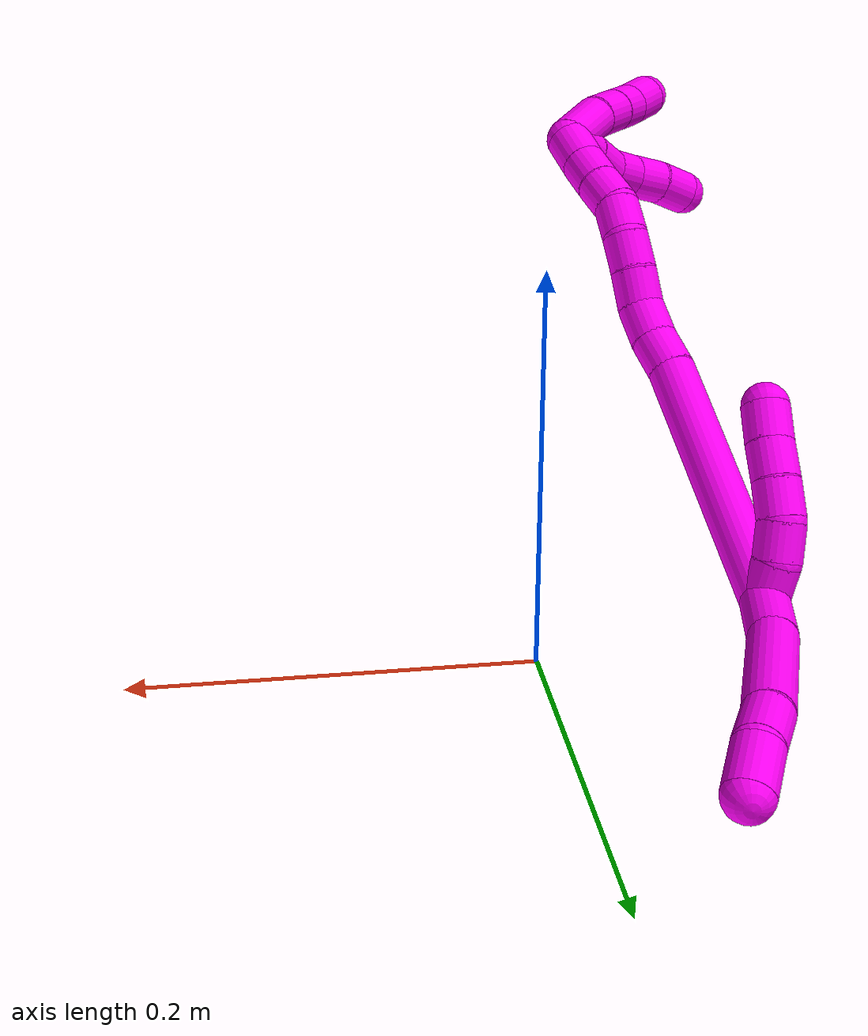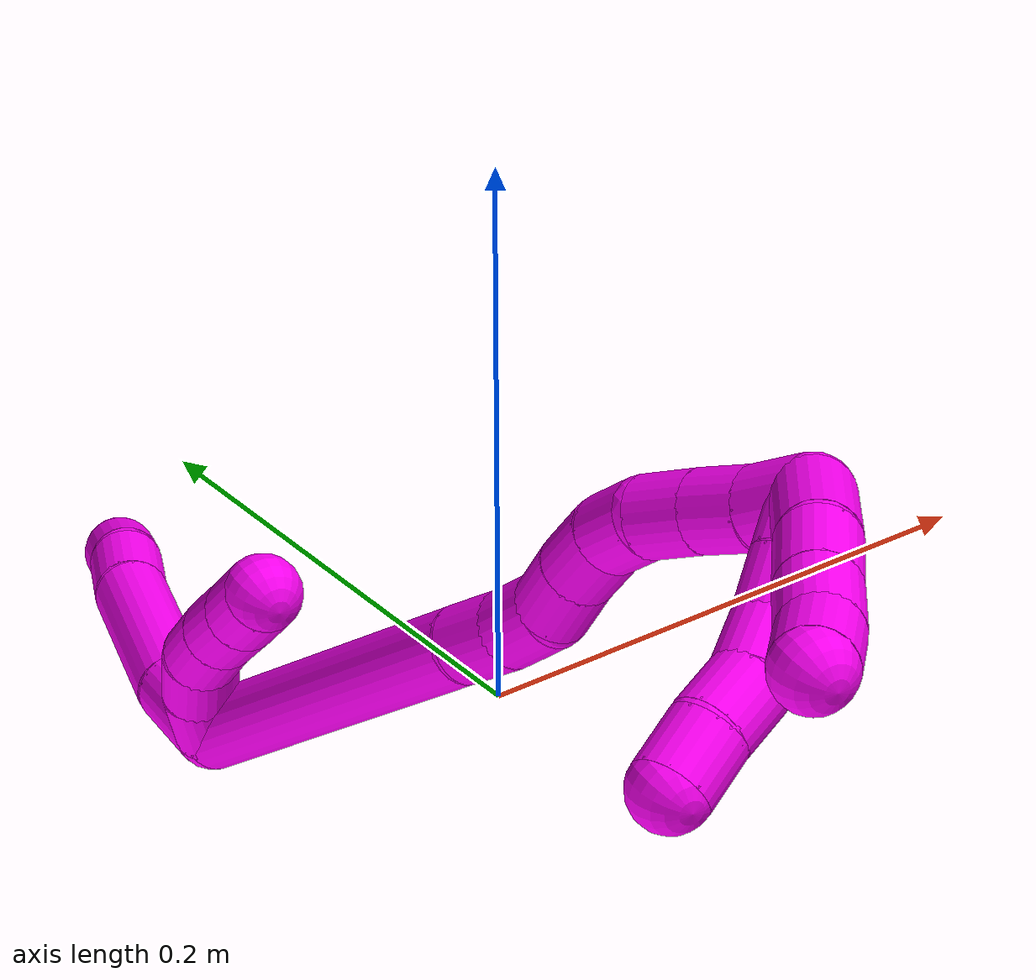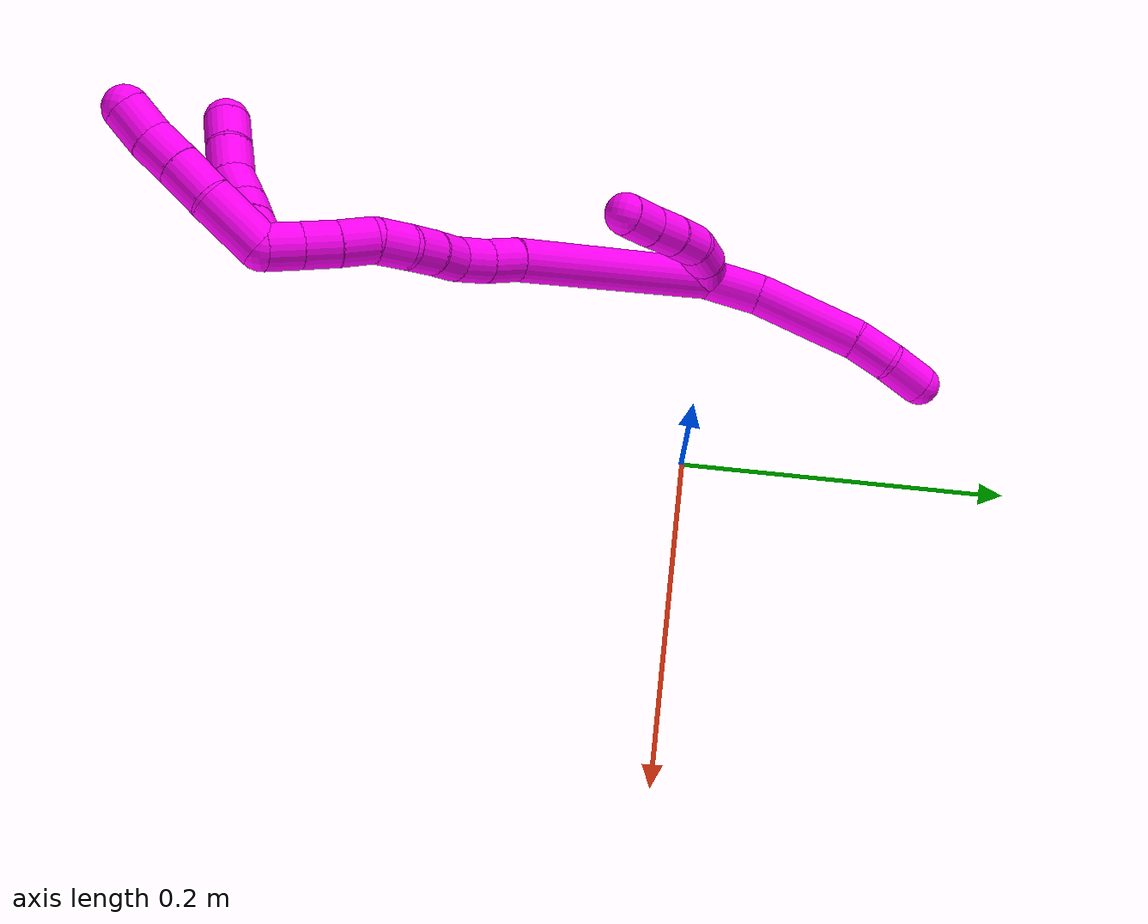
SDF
<sdf version="1.7">
 <world name="default">
  <model name="10">
   <static>0</static>
   <link name="10">
    <collision name="collision-cylinder-e_1_2_8">
     <pose>-0.001091 0.001719 -0.017016 -3.04092 -0.0637 1.12782</pose>
     <geometry><cylinder><radius>0.0125</radius><length>0.034274</length></cylinder></geometry>
     <surface>
      <friction><ode><mu>1.16</mu><mu2>1.16</mu2><slip1>0</slip1><slip2>0</slip2></ode></friction>
      <contact><ode><kp>1e+06</kp><kd>1</kd><max_vel>0</max_vel><min_depth>0.001</min_depth></ode></contact>
     </surface>
    </collision>
    <visual name="visual-cylinder-e_1_2_8">
     <pose>-0.001091 0.001719 -0.017016 -3.04092 -0.0637 1.12782</pose>
     <geometry><cylinder><radius>0.0125</radius><length>0.034274</length></cylinder></geometry>
     <material><ambient>1 0 0.964706 1</ambient></material>
    </visual>
    <collision name="collision-cylinder-e_2_8_9">
     <pose>-0.008284 0.002966 -0.066195 3.12694 -0.187474 -2.98602</pose>
     <geometry><cylinder><radius>0.0125</radius><length>0.065481</length></cylinder></geometry>
     <surface>
      <friction><ode><mu>1.16</mu><mu2>1.16</mu2><slip1>0</slip1><slip2>0</slip2></ode></friction>
      <contact><ode><kp>1e+06</kp><kd>1</kd><max_vel>0</max_vel><min_depth>0.001</min_depth></ode></contact>
     </surface>
    </collision>
    <visual name="visual-cylinder-e_2_8_9">
     <pose>-0.008284 0.002966 -0.066195 3.12694 -0.187474 -2.98602</pose>
     <geometry><cylinder><radius>0.0125</radius><length>0.065481</length></cylinder></geometry>
     <material><ambient>1 0 0.964706 1</ambient></material>
    </visual>
    <collision name="collision-cylinder-e_3_9_10">
     <pose>-0.018527 0.002494 -0.109971 3.14148 -0.342574 -3.14096</pose>
     <geometry><cylinder><radius>0.0125</radius><length>0.024657</length></cylinder></geometry>
     <surface>
      <friction><ode><mu>1.16</mu><mu2>1.16</mu2><slip1>0</slip1><slip2>0</slip2></ode></friction>
      <contact><ode><kp>1e+06</kp><kd>1</kd><max_vel>0</max_vel><min_depth>0.001</min_depth></ode></contact>
     </surface>
    </collision>
    <visual name="visual-cylinder-e_3_9_10">
     <pose>-0.018527 0.002494 -0.109971 3.14148 -0.342574 -3.14096</pose>
     <geometry><cylinder><radius>0.0125</radius><length>0.024657</length></cylinder></geometry>
     <material><ambient>1 0 0.964706 1</ambient></material>
    </visual>
    <collision name="collision-cylinder-e_4_10_6">
     <pose>-0.02784 0.006033 -0.132736 -2.83422 -0.416155 1.87562</pose>
     <geometry><cylinder><radius>0.0125</radius><length>0.025588</length></cylinder></geometry>
     <surface>
      <friction><ode><mu>1.16</mu><mu2>1.16</mu2><slip1>0</slip1><slip2>0</slip2></ode></friction>
      <contact><ode><kp>1e+06</kp><kd>1</kd><max_vel>0</max_vel><min_depth>0.001</min_depth></ode></contact>
     </surface>
    </collision>
    <visual name="visual-cylinder-e_4_10_6">
     <pose>-0.02784 0.006033 -0.132736 -2.83422 -0.416155 1.87562</pose>
     <geometry><cylinder><radius>0.0125</radius><length>0.025588</length></cylinder></geometry>
     <material><ambient>1 0 0.964706 1</ambient></material>
    </visual>
    <collision name="collision-cylinder-e_1_2_11">
     <pose>0.006164 -0.007775 0.001244 1.4121 0.664204 0.572015</pose>
     <geometry><cylinder><radius>0.0125</radius><length>0.02</length></cylinder></geometry>
     <surface>
      <friction><ode><mu>1.16</mu><mu2>1.16</mu2><slip1>0</slip1><slip2>0</slip2></ode></friction>
      <contact><ode><kp>1e+06</kp><kd>1</kd><max_vel>0</max_vel><min_depth>0.001</min_depth></ode></contact>
     </surface>
    </collision>
    <visual name="visual-cylinder-e_1_2_11">
     <pose>0.006164 -0.007775 0.001244 1.4121 0.664204 0.572015</pose>
     <geometry><cylinder><radius>0.0125</radius><length>0.02</length></cylinder></geometry>
     <material><ambient>1 0 0.964706 1</ambient></material>
    </visual>
    <collision name="collision-cylinder-e_2_11_12">
     <pose>0.016956 -0.023666 0.006055 1.15673 0.481108 0.317589</pose>
     <geometry><cylinder><radius>0.0125</radius><length>0.02</length></cylinder></geometry>
     <surface>
      <friction><ode><mu>1.16</mu><mu2>1.16</mu2><slip1>0</slip1><slip2>0</slip2></ode></friction>
      <contact><ode><kp>1e+06</kp><kd>1</kd><max_vel>0</max_vel><min_depth>0.001</min_depth></ode></contact>
     </surface>
    </collision>
    <visual name="visual-cylinder-e_2_11_12">
     <pose>0.016956 -0.023666 0.006055 1.15673 0.481108 0.317589</pose>
     <geometry><cylinder><radius>0.0125</radius><length>0.02</length></cylinder></geometry>
     <material><ambient>1 0 0.964706 1</ambient></material>
    </visual>
    <collision name="collision-cylinder-e_3_12_13">
     <pose>0.023848 -0.039416 0.015671 0.900715 0.228401 0.1108</pose>
     <geometry><cylinder><radius>0.0125</radius><length>0.02</length></cylinder></geometry>
     <surface>
      <friction><ode><mu>1.16</mu><mu2>1.16</mu2><slip1>0</slip1><slip2>0</slip2></ode></friction>
      <contact><ode><kp>1e+06</kp><kd>1</kd><max_vel>0</max_vel><min_depth>0.001</min_depth></ode></contact>
     </surface>
    </collision>
    <visual name="visual-cylinder-e_3_12_13">
     <pose>0.023848 -0.039416 0.015671 0.900715 0.228401 0.1108</pose>
     <geometry><cylinder><radius>0.0125</radius><length>0.02</length></cylinder></geometry>
     <material><ambient>1 0 0.964706 1</ambient></material>
    </visual>
    <collision name="collision-cylinder-e_4_13_14">
     <pose>0.028013 -0.054244 0.028401 0.822416 0.191269 0.083613</pose>
     <geometry><cylinder><radius>0.0125</radius><length>0.02</length></cylinder></geometry>
     <surface>
      <friction><ode><mu>1.16</mu><mu2>1.16</mu2><slip1>0</slip1><slip2>0</slip2></ode></friction>
      <contact><ode><kp>1e+06</kp><kd>1</kd><max_vel>0</max_vel><min_depth>0.001</min_depth></ode></contact>
     </surface>
    </collision>
    <visual name="visual-cylinder-e_4_13_14">
     <pose>0.028013 -0.054244 0.028401 0.822416 0.191269 0.083613</pose>
     <geometry><cylinder><radius>0.0125</radius><length>0.02</length></cylinder></geometry>
     <material><ambient>1 0 0.964706 1</ambient></material>
    </visual>
    <collision name="collision-cylinder-e_5_14_5">
     <pose>0.032256 -0.068483 0.041782 0.810411 0.236315 0.101752</pose>
     <geometry><cylinder><radius>0.0125</radius><length>0.02</length></cylinder></geometry>
     <surface>
      <friction><ode><mu>1.16</mu><mu2>1.16</mu2><slip1>0</slip1><slip2>0</slip2></ode></friction>
      <contact><ode><kp>1e+06</kp><kd>1</kd><max_vel>0</max_vel><min_depth>0.001</min_depth></ode></contact>
     </surface>
    </collision>
    <visual name="visual-cylinder-e_5_14_5">
     <pose>0.032256 -0.068483 0.041782 0.810411 0.236315 0.101752</pose>
     <geometry><cylinder><radius>0.0125</radius><length>0.02</length></cylinder></geometry>
     <material><ambient>1 0 0.964706 1</ambient></material>
    </visual>
    <collision name="collision-cylinder-e_1_2_15">
     <pose>-0.001633 -0.046396 0.051011 0.738053 -0.023681 -0.009159</pose>
     <geometry><cylinder><radius>0.0125</radius><length>0.137948</length></cylinder></geometry>
     <surface>
      <friction><ode><mu>1.16</mu><mu2>1.16</mu2><slip1>0</slip1><slip2>0</slip2></ode></friction>
      <contact><ode><kp>1e+06</kp><kd>1</kd><max_vel>0</max_vel><min_depth>0.001</min_depth></ode></contact>
     </surface>
    </collision>
    <visual name="visual-cylinder-e_1_2_15">
     <pose>-0.001633 -0.046396 0.051011 0.738053 -0.023681 -0.009159</pose>
     <geometry><cylinder><radius>0.0125</radius><length>0.137948</length></cylinder></geometry>
     <material><ambient>1 0 0.964706 1</ambient></material>
    </visual>
    <collision name="collision-cylinder-e_2_15_16">
     <pose>-0.004791 -0.099887 0.109265 0.775095 -0.149246 -0.061015</pose>
     <geometry><cylinder><radius>0.0125</radius><length>0.020505</length></cylinder></geometry>
     <surface>
      <friction><ode><mu>1.16</mu><mu2>1.16</mu2><slip1>0</slip1><slip2>0</slip2></ode></friction>
      <contact><ode><kp>1e+06</kp><kd>1</kd><max_vel>0</max_vel><min_depth>0.001</min_depth></ode></contact>
     </surface>
    </collision>
    <visual name="visual-cylinder-e_2_15_16">
     <pose>-0.004791 -0.099887 0.109265 0.775095 -0.149246 -0.061015</pose>
     <geometry><cylinder><radius>0.0125</radius><length>0.020505</length></cylinder></geometry>
     <material><ambient>1 0 0.964706 1</ambient></material>
    </visual>
    <collision name="collision-cylinder-e_3_16_17">
     <pose>-0.006542 -0.114675 0.123616 0.824933 -0.021586 -0.009446</pose>
     <geometry><cylinder><radius>0.0125</radius><length>0.020955</length></cylinder></geometry>
     <surface>
      <friction><ode><mu>1.16</mu><mu2>1.16</mu2><slip1>0</slip1><slip2>0</slip2></ode></friction>
      <contact><ode><kp>1e+06</kp><kd>1</kd><max_vel>0</max_vel><min_depth>0.001</min_depth></ode></contact>
     </surface>
    </collision>
    <visual name="visual-cylinder-e_3_16_17">
     <pose>-0.006542 -0.114675 0.123616 0.824933 -0.021586 -0.009446</pose>
     <geometry><cylinder><radius>0.0125</radius><length>0.020955</length></cylinder></geometry>
     <material><ambient>1 0 0.964706 1</ambient></material>
    </visual>
    <collision name="collision-cylinder-e_4_17_18">
     <pose>-0.005134 -0.131249 0.135061 1.11647 0.163803 0.102433</pose>
     <geometry><cylinder><radius>0.0125</radius><length>0.020032</length></cylinder></geometry>
     <surface>
      <friction><ode><mu>1.16</mu><mu2>1.16</mu2><slip1>0</slip1><slip2>0</slip2></ode></friction>
      <contact><ode><kp>1e+06</kp><kd>1</kd><max_vel>0</max_vel><min_depth>0.001</min_depth></ode></contact>
     </surface>
    </collision>
    <visual name="visual-cylinder-e_4_17_18">
     <pose>-0.005134 -0.131249 0.135061 1.11647 0.163803 0.102433</pose>
     <geometry><cylinder><radius>0.0125</radius><length>0.020032</length></cylinder></geometry>
     <material><ambient>1 0 0.964706 1</ambient></material>
    </visual>
    <collision name="collision-cylinder-e_5_18_19">
     <pose>-0.002319 -0.148645 0.144538 1.02778 0.118315 0.06684</pose>
     <geometry><cylinder><radius>0.0125</radius><length>0.020036</length></cylinder></geometry>
     <surface>
      <friction><ode><mu>1.16</mu><mu2>1.16</mu2><slip1>0</slip1><slip2>0</slip2></ode></friction>
      <contact><ode><kp>1e+06</kp><kd>1</kd><max_vel>0</max_vel><min_depth>0.001</min_depth></ode></contact>
     </surface>
    </collision>
    <visual name="visual-cylinder-e_5_18_19">
     <pose>-0.002319 -0.148645 0.144538 1.02778 0.118315 0.06684</pose>
     <geometry><cylinder><radius>0.0125</radius><length>0.020036</length></cylinder></geometry>
     <material><ambient>1 0 0.964706 1</ambient></material>
    </visual>
    <collision name="collision-cylinder-e_6_19_20">
     <pose>-0.000442 -0.164055 0.157033 0.752993 0.068736 0.027184</pose>
     <geometry><cylinder><radius>0.0125</radius><length>0.020208</length></cylinder></geometry>
     <surface>
      <friction><ode><mu>1.16</mu><mu2>1.16</mu2><slip1>0</slip1><slip2>0</slip2></ode></friction>
      <contact><ode><kp>1e+06</kp><kd>1</kd><max_vel>0</max_vel><min_depth>0.001</min_depth></ode></contact>
     </surface>
    </collision>
    <visual name="visual-cylinder-e_6_19_20">
     <pose>-0.000442 -0.164055 0.157033 0.752993 0.068736 0.027184</pose>
     <geometry><cylinder><radius>0.0125</radius><length>0.020208</length></cylinder></geometry>
     <material><ambient>1 0 0.964706 1</ambient></material>
    </visual>
    <collision name="collision-cylinder-e_7_20_21">
     <pose>-0.002143 -0.176623 0.172364 0.618353 -0.239989 -0.076989</pose>
     <geometry><cylinder><radius>0.0125</radius><length>0.020154</length></cylinder></geometry>
     <surface>
      <friction><ode><mu>1.16</mu><mu2>1.16</mu2><slip1>0</slip1><slip2>0</slip2></ode></friction>
      <contact><ode><kp>1e+06</kp><kd>1</kd><max_vel>0</max_vel><min_depth>0.001</min_depth></ode></contact>
     </surface>
    </collision>
    <visual name="visual-cylinder-e_7_20_21">
     <pose>-0.002143 -0.176623 0.172364 0.618353 -0.239989 -0.076989</pose>
     <geometry><cylinder><radius>0.0125</radius><length>0.020154</length></cylinder></geometry>
     <material><ambient>1 0 0.964706 1</ambient></material>
    </visual>
    <collision name="collision-cylinder-e_8_21_22">
     <pose>-0.006559 -0.187606 0.188613 0.570524 -0.202766 -0.05965</pose>
     <geometry><cylinder><radius>0.0125</radius><length>0.020069</length></cylinder></geometry>
     <surface>
      <friction><ode><mu>1.16</mu><mu2>1.16</mu2><slip1>0</slip1><slip2>0</slip2></ode></friction>
      <contact><ode><kp>1e+06</kp><kd>1</kd><max_vel>0</max_vel><min_depth>0.001</min_depth></ode></contact>
     </surface>
    </collision>
    <visual name="visual-cylinder-e_8_21_22">
     <pose>-0.006559 -0.187606 0.188613 0.570524 -0.202766 -0.05965</pose>
     <geometry><cylinder><radius>0.0125</radius><length>0.020069</length></cylinder></geometry>
     <material><ambient>1 0 0.964706 1</ambient></material>
    </visual>
    <collision name="collision-cylinder-e_9_22_1">
     <pose>-0.010263 -0.199173 0.204561 0.68409 -0.168263 -0.060032</pose>
     <geometry><cylinder><radius>0.0125</radius><length>0.020092</length></cylinder></geometry>
     <surface>
      <friction><ode><mu>1.16</mu><mu2>1.16</mu2><slip1>0</slip1><slip2>0</slip2></ode></friction>
      <contact><ode><kp>1e+06</kp><kd>1</kd><max_vel>0</max_vel><min_depth>0.001</min_depth></ode></contact>
     </surface>
    </collision>
    <visual name="visual-cylinder-e_9_22_1">
     <pose>-0.010263 -0.199173 0.204561 0.68409 -0.168263 -0.060032</pose>
     <geometry><cylinder><radius>0.0125</radius><length>0.020092</length></cylinder></geometry>
     <material><ambient>1 0 0.964706 1</ambient></material>
    </visual>
    <collision name="collision-cylinder-e_1_1_23">
     <pose>-0.002908 -0.205555 0.227409 0.008075 0.537175 0.002223</pose>
     <geometry><cylinder><radius>0.0125</radius><length>0.035321</length></cylinder></geometry>
     <surface>
      <friction><ode><mu>1.16</mu><mu2>1.16</mu2><slip1>0</slip1><slip2>0</slip2></ode></friction>
      <contact><ode><kp>1e+06</kp><kd>1</kd><max_vel>0</max_vel><min_depth>0.001</min_depth></ode></contact>
     </surface>
    </collision>
    <visual name="visual-cylinder-e_1_1_23">
     <pose>-0.002908 -0.205555 0.227409 0.008075 0.537175 0.002223</pose>
     <geometry><cylinder><radius>0.0125</radius><length>0.035321</length></cylinder></geometry>
     <material><ambient>1 0 0.964706 1</ambient></material>
    </visual>
    <collision name="collision-cylinder-e_2_23_24">
     <pose>0.011743 -0.203522 0.252717 -0.209538 0.496515 -0.053298</pose>
     <geometry><cylinder><radius>0.0125</radius><length>0.023569</length></cylinder></geometry>
     <surface>
      <friction><ode><mu>1.16</mu><mu2>1.16</mu2><slip1>0</slip1><slip2>0</slip2></ode></friction>
      <contact><ode><kp>1e+06</kp><kd>1</kd><max_vel>0</max_vel><min_depth>0.001</min_depth></ode></contact>
     </surface>
    </collision>
    <visual name="visual-cylinder-e_2_23_24">
     <pose>0.011743 -0.203522 0.252717 -0.209538 0.496515 -0.053298</pose>
     <geometry><cylinder><radius>0.0125</radius><length>0.023569</length></cylinder></geometry>
     <material><ambient>1 0 0.964706 1</ambient></material>
    </visual>
    <collision name="collision-cylinder-e_3_24_25">
     <pose>0.021928 -0.199401 0.271878 -0.214481 0.459494 -0.050345</pose>
     <geometry><cylinder><radius>0.0125</radius><length>0.020614</length></cylinder></geometry>
     <surface>
      <friction><ode><mu>1.16</mu><mu2>1.16</mu2><slip1>0</slip1><slip2>0</slip2></ode></friction>
      <contact><ode><kp>1e+06</kp><kd>1</kd><max_vel>0</max_vel><min_depth>0.001</min_depth></ode></contact>
     </surface>
    </collision>
    <visual name="visual-cylinder-e_3_24_25">
     <pose>0.021928 -0.199401 0.271878 -0.214481 0.459494 -0.050345</pose>
     <geometry><cylinder><radius>0.0125</radius><length>0.020614</length></cylinder></geometry>
     <material><ambient>1 0 0.964706 1</ambient></material>
    </visual>
    <collision name="collision-cylinder-e_4_25_4">
     <pose>0.032478 -0.196351 0.289156 -0.130524 0.623002 -0.04208</pose>
     <geometry><cylinder><radius>0.0125</radius><length>0.020496</length></cylinder></geometry>
     <surface>
      <friction><ode><mu>1.16</mu><mu2>1.16</mu2><slip1>0</slip1><slip2>0</slip2></ode></friction>
      <contact><ode><kp>1e+06</kp><kd>1</kd><max_vel>0</max_vel><min_depth>0.001</min_depth></ode></contact>
     </surface>
    </collision>
    <visual name="visual-cylinder-e_4_25_4">
     <pose>0.032478 -0.196351 0.289156 -0.130524 0.623002 -0.04208</pose>
     <geometry><cylinder><radius>0.0125</radius><length>0.020496</length></cylinder></geometry>
     <material><ambient>1 0 0.964706 1</ambient></material>
    </visual>
    <collision name="collision-cylinder-e_1_1_26">
     <pose>-0.00822 -0.198216 0.218071 -0.890892 0.381728 -0.183982</pose>
     <geometry><cylinder><radius>0.0125</radius><length>0.02</length></cylinder></geometry>
     <surface>
      <friction><ode><mu>1.16</mu><mu2>1.16</mu2><slip1>0</slip1><slip2>0</slip2></ode></friction>
      <contact><ode><kp>1e+06</kp><kd>1</kd><max_vel>0</max_vel><min_depth>0.001</min_depth></ode></contact>
     </surface>
    </collision>
    <visual name="visual-cylinder-e_1_1_26">
     <pose>-0.00822 -0.198216 0.218071 -0.890892 0.381728 -0.183982</pose>
     <geometry><cylinder><radius>0.0125</radius><length>0.02</length></cylinder></geometry>
     <material><ambient>1 0 0.964706 1</ambient></material>
    </visual>
    <collision name="collision-cylinder-e_2_26_27">
     <pose>-0.001185 -0.183313 0.22938 -0.951942 0.337365 -0.175131</pose>
     <geometry><cylinder><radius>0.0125</radius><length>0.02</length></cylinder></geometry>
     <surface>
      <friction><ode><mu>1.16</mu><mu2>1.16</mu2><slip1>0</slip1><slip2>0</slip2></ode></friction>
      <contact><ode><kp>1e+06</kp><kd>1</kd><max_vel>0</max_vel><min_depth>0.001</min_depth></ode></contact>
     </surface>
    </collision>
    <visual name="visual-cylinder-e_2_26_27">
     <pose>-0.001185 -0.183313 0.22938 -0.951942 0.337365 -0.175131</pose>
     <geometry><cylinder><radius>0.0125</radius><length>0.02</length></cylinder></geometry>
     <material><ambient>1 0 0.964706 1</ambient></material>
    </visual>
    <collision name="collision-cylinder-e_3_27_28">
     <pose>0.007365 -0.170047 0.24129 -0.714244 0.551436 -0.21035</pose>
     <geometry><cylinder><radius>0.0125</radius><length>0.02</length></cylinder></geometry>
     <surface>
      <friction><ode><mu>1.16</mu><mu2>1.16</mu2><slip1>0</slip1><slip2>0</slip2></ode></friction>
      <contact><ode><kp>1e+06</kp><kd>1</kd><max_vel>0</max_vel><min_depth>0.001</min_depth></ode></contact>
     </surface>
    </collision>
    <visual name="visual-cylinder-e_3_27_28">
     <pose>0.007365 -0.170047 0.24129 -0.714244 0.551436 -0.21035</pose>
     <geometry><cylinder><radius>0.0125</radius><length>0.02</length></cylinder></geometry>
     <material><ambient>1 0 0.964706 1</ambient></material>
    </visual>
    <collision name="collision-cylinder-e_4_28_29">
     <pose>0.019495 -0.158546 0.251902 -0.956438 0.760323 -0.408488</pose>
     <geometry><cylinder><radius>0.0125</radius><length>0.02</length></cylinder></geometry>
     <surface>
      <friction><ode><mu>1.16</mu><mu2>1.16</mu2><slip1>0</slip1><slip2>0</slip2></ode></friction>
      <contact><ode><kp>1e+06</kp><kd>1</kd><max_vel>0</max_vel><min_depth>0.001</min_depth></ode></contact>
     </surface>
    </collision>
    <visual name="visual-cylinder-e_4_28_29">
     <pose>0.019495 -0.158546 0.251902 -0.956438 0.760323 -0.408488</pose>
     <geometry><cylinder><radius>0.0125</radius><length>0.02</length></cylinder></geometry>
     <material><ambient>1 0 0.964706 1</ambient></material>
    </visual>
    <collision name="collision-cylinder-e_5_29_3">
     <pose>0.032237 -0.145687 0.260278 -1.02662 0.624902 -0.360247</pose>
     <geometry><cylinder><radius>0.0125</radius><length>0.02</length></cylinder></geometry>
     <surface>
      <friction><ode><mu>1.16</mu><mu2>1.16</mu2><slip1>0</slip1><slip2>0</slip2></ode></friction>
      <contact><ode><kp>1e+06</kp><kd>1</kd><max_vel>0</max_vel><min_depth>0.001</min_depth></ode></contact>
     </surface>
    </collision>
    <visual name="visual-cylinder-e_5_29_3">
     <pose>0.032237 -0.145687 0.260278 -1.02662 0.624902 -0.360247</pose>
     <geometry><cylinder><radius>0.0125</radius><length>0.02</length></cylinder></geometry>
     <material><ambient>1 0 0.964706 1</ambient></material>
    </visual>
    <collision name="collision-sphere-3">
     <pose>0.038087 -0.138748 0.264477 0 -0 0</pose>
     <geometry><sphere><radius>0.0125</radius></sphere></geometry>
     <surface>
      <friction><ode><mu>1.16</mu><mu2>1.16</mu2><slip1>0</slip1><slip2>0</slip2></ode></friction>
      <contact><ode><kp>1e+06</kp><kd>1</kd><max_vel>0</max_vel><min_depth>0.001</min_depth></ode></contact>
     </surface>
    </collision>
    <visual name="visual-sphere-3">
     <pose>0.038087 -0.138748 0.264477 0 -0 0</pose>
     <geometry><sphere><radius>0.0125</radius></sphere></geometry>
     <material><ambient>1 0 0.964706 1</ambient></material>
    </visual>
    <collision name="collision-sphere-29">
     <pose>0.026387 -0.152625 0.256079 0 -0 0</pose>
     <geometry><sphere><radius>0.0125</radius></sphere></geometry>
     <surface>
      <friction><ode><mu>1.16</mu><mu2>1.16</mu2><slip1>0</slip1><slip2>0</slip2></ode></friction>
      <contact><ode><kp>1e+06</kp><kd>1</kd><max_vel>0</max_vel><min_depth>0.001</min_depth></ode></contact>
     </surface>
    </collision>
    <visual name="visual-sphere-29">
     <pose>0.026387 -0.152625 0.256079 0 -0 0</pose>
     <geometry><sphere><radius>0.0125</radius></sphere></geometry>
     <material><ambient>1 0 0.964706 1</ambient></material>
    </visual>
    <collision name="collision-sphere-28">
     <pose>0.012604 -0.164468 0.247726 0 -0 0</pose>
     <geometry><sphere><radius>0.0125</radius></sphere></geometry>
     <surface>
      <friction><ode><mu>1.16</mu><mu2>1.16</mu2><slip1>0</slip1><slip2>0</slip2></ode></friction>
      <contact><ode><kp>1e+06</kp><kd>1</kd><max_vel>0</max_vel><min_depth>0.001</min_depth></ode></contact>
     </surface>
    </collision>
    <visual name="visual-sphere-28">
     <pose>0.012604 -0.164468 0.247726 0 -0 0</pose>
     <geometry><sphere><radius>0.0125</radius></sphere></geometry>
     <material><ambient>1 0 0.964706 1</ambient></material>
    </visual>
    <collision name="collision-sphere-27">
     <pose>0.002125 -0.175627 0.234854 0 -0 0</pose>
     <geometry><sphere><radius>0.0125</radius></sphere></geometry>
     <surface>
      <friction><ode><mu>1.16</mu><mu2>1.16</mu2><slip1>0</slip1><slip2>0</slip2></ode></friction>
      <contact><ode><kp>1e+06</kp><kd>1</kd><max_vel>0</max_vel><min_depth>0.001</min_depth></ode></contact>
     </surface>
    </collision>
    <visual name="visual-sphere-27">
     <pose>0.002125 -0.175627 0.234854 0 -0 0</pose>
     <geometry><sphere><radius>0.0125</radius></sphere></geometry>
     <material><ambient>1 0 0.964706 1</ambient></material>
    </visual>
    <collision name="collision-sphere-26">
     <pose>-0.004495 -0.190999 0.223906 0 -0 0</pose>
     <geometry><sphere><radius>0.0125</radius></sphere></geometry>
     <surface>
      <friction><ode><mu>1.16</mu><mu2>1.16</mu2><slip1>0</slip1><slip2>0</slip2></ode></friction>
      <contact><ode><kp>1e+06</kp><kd>1</kd><max_vel>0</max_vel><min_depth>0.001</min_depth></ode></contact>
     </surface>
    </collision>
    <visual name="visual-sphere-26">
     <pose>-0.004495 -0.190999 0.223906 0 -0 0</pose>
     <geometry><sphere><radius>0.0125</radius></sphere></geometry>
     <material><ambient>1 0 0.964706 1</ambient></material>
    </visual>
    <collision name="collision-sphere-4">
     <pose>0.038458 -0.195268 0.297408 0 -0 0</pose>
     <geometry><sphere><radius>0.0125</radius></sphere></geometry>
     <surface>
      <friction><ode><mu>1.16</mu><mu2>1.16</mu2><slip1>0</slip1><slip2>0</slip2></ode></friction>
      <contact><ode><kp>1e+06</kp><kd>1</kd><max_vel>0</max_vel><min_depth>0.001</min_depth></ode></contact>
     </surface>
    </collision>
    <visual name="visual-sphere-4">
     <pose>0.038458 -0.195268 0.297408 0 -0 0</pose>
     <geometry><sphere><radius>0.0125</radius></sphere></geometry>
     <material><ambient>1 0 0.964706 1</ambient></material>
    </visual>
    <collision name="collision-sphere-25">
     <pose>0.026499 -0.197434 0.280904 0 -0 0</pose>
     <geometry><sphere><radius>0.0125</radius></sphere></geometry>
     <surface>
      <friction><ode><mu>1.16</mu><mu2>1.16</mu2><slip1>0</slip1><slip2>0</slip2></ode></friction>
      <contact><ode><kp>1e+06</kp><kd>1</kd><max_vel>0</max_vel><min_depth>0.001</min_depth></ode></contact>
     </surface>
    </collision>
    <visual name="visual-sphere-25">
     <pose>0.026499 -0.197434 0.280904 0 -0 0</pose>
     <geometry><sphere><radius>0.0125</radius></sphere></geometry>
     <material><ambient>1 0 0.964706 1</ambient></material>
    </visual>
    <collision name="collision-sphere-24">
     <pose>0.017357 -0.201367 0.262851 0 -0 0</pose>
     <geometry><sphere><radius>0.0125</radius></sphere></geometry>
     <surface>
      <friction><ode><mu>1.16</mu><mu2>1.16</mu2><slip1>0</slip1><slip2>0</slip2></ode></friction>
      <contact><ode><kp>1e+06</kp><kd>1</kd><max_vel>0</max_vel><min_depth>0.001</min_depth></ode></contact>
     </surface>
    </collision>
    <visual name="visual-sphere-24">
     <pose>0.017357 -0.201367 0.262851 0 -0 0</pose>
     <geometry><sphere><radius>0.0125</radius></sphere></geometry>
     <material><ambient>1 0 0.964706 1</ambient></material>
    </visual>
    <collision name="collision-sphere-23">
     <pose>0.006129 -0.205677 0.242582 0 -0 0</pose>
     <geometry><sphere><radius>0.0125</radius></sphere></geometry>
     <surface>
      <friction><ode><mu>1.16</mu><mu2>1.16</mu2><slip1>0</slip1><slip2>0</slip2></ode></friction>
      <contact><ode><kp>1e+06</kp><kd>1</kd><max_vel>0</max_vel><min_depth>0.001</min_depth></ode></contact>
     </surface>
    </collision>
    <visual name="visual-sphere-23">
     <pose>0.006129 -0.205677 0.242582 0 -0 0</pose>
     <geometry><sphere><radius>0.0125</radius></sphere></geometry>
     <material><ambient>1 0 0.964706 1</ambient></material>
    </visual>
    <collision name="collision-sphere-1">
     <pose>-0.011945 -0.205432 0.212236 0 -0 0</pose>
     <geometry><sphere><radius>0.0125</radius></sphere></geometry>
     <surface>
      <friction><ode><mu>1.16</mu><mu2>1.16</mu2><slip1>0</slip1><slip2>0</slip2></ode></friction>
      <contact><ode><kp>1e+06</kp><kd>1</kd><max_vel>0</max_vel><min_depth>0.001</min_depth></ode></contact>
     </surface>
    </collision>
    <visual name="visual-sphere-1">
     <pose>-0.011945 -0.205432 0.212236 0 -0 0</pose>
     <geometry><sphere><radius>0.0125</radius></sphere></geometry>
     <material><ambient>1 0 0.964706 1</ambient></material>
    </visual>
    <collision name="collision-sphere-22">
     <pose>-0.00858 -0.192914 0.196885 0 -0 0</pose>
     <geometry><sphere><radius>0.0125</radius></sphere></geometry>
     <surface>
      <friction><ode><mu>1.16</mu><mu2>1.16</mu2><slip1>0</slip1><slip2>0</slip2></ode></friction>
      <contact><ode><kp>1e+06</kp><kd>1</kd><max_vel>0</max_vel><min_depth>0.001</min_depth></ode></contact>
     </surface>
    </collision>
    <visual name="visual-sphere-22">
     <pose>-0.00858 -0.192914 0.196885 0 -0 0</pose>
     <geometry><sphere><radius>0.0125</radius></sphere></geometry>
     <material><ambient>1 0 0.964706 1</ambient></material>
    </visual>
    <collision name="collision-sphere-21">
     <pose>-0.004539 -0.182297 0.18034 0 -0 0</pose>
     <geometry><sphere><radius>0.0125</radius></sphere></geometry>
     <surface>
      <friction><ode><mu>1.16</mu><mu2>1.16</mu2><slip1>0</slip1><slip2>0</slip2></ode></friction>
      <contact><ode><kp>1e+06</kp><kd>1</kd><max_vel>0</max_vel><min_depth>0.001</min_depth></ode></contact>
     </surface>
    </collision>
    <visual name="visual-sphere-21">
     <pose>-0.004539 -0.182297 0.18034 0 -0 0</pose>
     <geometry><sphere><radius>0.0125</radius></sphere></geometry>
     <material><ambient>1 0 0.964706 1</ambient></material>
    </visual>
    <collision name="collision-sphere-11">
     <pose>0.012329 -0.01555 0.002489 0 -0 0</pose>
     <geometry><sphere><radius>0.0125</radius></sphere></geometry>
     <surface>
      <friction><ode><mu>1.16</mu><mu2>1.16</mu2><slip1>0</slip1><slip2>0</slip2></ode></friction>
      <contact><ode><kp>1e+06</kp><kd>1</kd><max_vel>0</max_vel><min_depth>0.001</min_depth></ode></contact>
     </surface>
    </collision>
    <visual name="visual-sphere-11">
     <pose>0.012329 -0.01555 0.002489 0 -0 0</pose>
     <geometry><sphere><radius>0.0125</radius></sphere></geometry>
     <material><ambient>1 0 0.964706 1</ambient></material>
    </visual>
    <collision name="collision-sphere-6">
     <pose>-0.033012 0.009573 -0.14389 0 -0 0</pose>
     <geometry><sphere><radius>0.0125</radius></sphere></geometry>
     <surface>
      <friction><ode><mu>1.16</mu><mu2>1.16</mu2><slip1>0</slip1><slip2>0</slip2></ode></friction>
      <contact><ode><kp>1e+06</kp><kd>1</kd><max_vel>0</max_vel><min_depth>0.001</min_depth></ode></contact>
     </surface>
    </collision>
    <visual name="visual-sphere-6">
     <pose>-0.033012 0.009573 -0.14389 0 -0 0</pose>
     <geometry><sphere><radius>0.0125</radius></sphere></geometry>
     <material><ambient>1 0 0.964706 1</ambient></material>
    </visual>
    <collision name="collision-sphere-10">
     <pose>-0.022669 0.002492 -0.121583 0 -0 0</pose>
     <geometry><sphere><radius>0.0125</radius></sphere></geometry>
     <surface>
      <friction><ode><mu>1.16</mu><mu2>1.16</mu2><slip1>0</slip1><slip2>0</slip2></ode></friction>
      <contact><ode><kp>1e+06</kp><kd>1</kd><max_vel>0</max_vel><min_depth>0.001</min_depth></ode></contact>
     </surface>
    </collision>
    <visual name="visual-sphere-10">
     <pose>-0.022669 0.002492 -0.121583 0 -0 0</pose>
     <geometry><sphere><radius>0.0125</radius></sphere></geometry>
     <material><ambient>1 0 0.964706 1</ambient></material>
    </visual>
    <collision name="collision-sphere-9">
     <pose>-0.014386 0.002495 -0.098359 0 -0 0</pose>
     <geometry><sphere><radius>0.0125</radius></sphere></geometry>
     <surface>
      <friction><ode><mu>1.16</mu><mu2>1.16</mu2><slip1>0</slip1><slip2>0</slip2></ode></friction>
      <contact><ode><kp>1e+06</kp><kd>1</kd><max_vel>0</max_vel><min_depth>0.001</min_depth></ode></contact>
     </surface>
    </collision>
    <visual name="visual-sphere-9">
     <pose>-0.014386 0.002495 -0.098359 0 -0 0</pose>
     <geometry><sphere><radius>0.0125</radius></sphere></geometry>
     <material><ambient>1 0 0.964706 1</ambient></material>
    </visual>
    <collision name="collision-sphere-2">
     <geometry><sphere><radius>0.0125</radius></sphere></geometry>
     <surface>
      <friction><ode><mu>1.16</mu><mu2>1.16</mu2><slip1>0</slip1><slip2>0</slip2></ode></friction>
      <contact><ode><kp>1e+06</kp><kd>1</kd><max_vel>0</max_vel><min_depth>0.001</min_depth></ode></contact>
     </surface>
    </collision>
    <visual name="visual-sphere-2">
     <geometry><sphere><radius>0.0125</radius></sphere></geometry>
     <material><ambient>1 0 0.964706 1</ambient></material>
    </visual>
    <collision name="collision-sphere-19">
     <pose>-0.001136 -0.157162 0.149678 0 -0 0</pose>
     <geometry><sphere><radius>0.0125</radius></sphere></geometry>
     <surface>
      <friction><ode><mu>1.16</mu><mu2>1.16</mu2><slip1>0</slip1><slip2>0</slip2></ode></friction>
      <contact><ode><kp>1e+06</kp><kd>1</kd><max_vel>0</max_vel><min_depth>0.001</min_depth></ode></contact>
     </surface>
    </collision>
    <visual name="visual-sphere-19">
     <pose>-0.001136 -0.157162 0.149678 0 -0 0</pose>
     <geometry><sphere><radius>0.0125</radius></sphere></geometry>
     <material><ambient>1 0 0.964706 1</ambient></material>
    </visual>
    <collision name="collision-sphere-8">
     <pose>-0.002182 0.003438 -0.034032 0 -0 0</pose>
     <geometry><sphere><radius>0.0125</radius></sphere></geometry>
     <surface>
      <friction><ode><mu>1.16</mu><mu2>1.16</mu2><slip1>0</slip1><slip2>0</slip2></ode></friction>
      <contact><ode><kp>1e+06</kp><kd>1</kd><max_vel>0</max_vel><min_depth>0.001</min_depth></ode></contact>
     </surface>
    </collision>
    <visual name="visual-sphere-8">
     <pose>-0.002182 0.003438 -0.034032 0 -0 0</pose>
     <geometry><sphere><radius>0.0125</radius></sphere></geometry>
     <material><ambient>1 0 0.964706 1</ambient></material>
    </visual>
    <collision name="collision-sphere-12">
     <pose>0.021584 -0.031782 0.009622 0 -0 0</pose>
     <geometry><sphere><radius>0.0125</radius></sphere></geometry>
     <surface>
      <friction><ode><mu>1.16</mu><mu2>1.16</mu2><slip1>0</slip1><slip2>0</slip2></ode></friction>
      <contact><ode><kp>1e+06</kp><kd>1</kd><max_vel>0</max_vel><min_depth>0.001</min_depth></ode></contact>
     </surface>
    </collision>
    <visual name="visual-sphere-12">
     <pose>0.021584 -0.031782 0.009622 0 -0 0</pose>
     <geometry><sphere><radius>0.0125</radius></sphere></geometry>
     <material><ambient>1 0 0.964706 1</ambient></material>
    </visual>
    <collision name="collision-sphere-13">
     <pose>0.026112 -0.04705 0.02172 0 -0 0</pose>
     <geometry><sphere><radius>0.0125</radius></sphere></geometry>
     <surface>
      <friction><ode><mu>1.16</mu><mu2>1.16</mu2><slip1>0</slip1><slip2>0</slip2></ode></friction>
      <contact><ode><kp>1e+06</kp><kd>1</kd><max_vel>0</max_vel><min_depth>0.001</min_depth></ode></contact>
     </surface>
    </collision>
    <visual name="visual-sphere-13">
     <pose>0.026112 -0.04705 0.02172 0 -0 0</pose>
     <geometry><sphere><radius>0.0125</radius></sphere></geometry>
     <material><ambient>1 0 0.964706 1</ambient></material>
    </visual>
    <collision name="collision-sphere-14">
     <pose>0.029914 -0.061439 0.035081 0 -0 0</pose>
     <geometry><sphere><radius>0.0125</radius></sphere></geometry>
     <surface>
      <friction><ode><mu>1.16</mu><mu2>1.16</mu2><slip1>0</slip1><slip2>0</slip2></ode></friction>
      <contact><ode><kp>1e+06</kp><kd>1</kd><max_vel>0</max_vel><min_depth>0.001</min_depth></ode></contact>
     </surface>
    </collision>
    <visual name="visual-sphere-14">
     <pose>0.029914 -0.061439 0.035081 0 -0 0</pose>
     <geometry><sphere><radius>0.0125</radius></sphere></geometry>
     <material><ambient>1 0 0.964706 1</ambient></material>
    </visual>
    <collision name="collision-sphere-5">
     <pose>0.034597 -0.075527 0.048482 0 -0 0</pose>
     <geometry><sphere><radius>0.0125</radius></sphere></geometry>
     <surface>
      <friction><ode><mu>1.16</mu><mu2>1.16</mu2><slip1>0</slip1><slip2>0</slip2></ode></friction>
      <contact><ode><kp>1e+06</kp><kd>1</kd><max_vel>0</max_vel><min_depth>0.001</min_depth></ode></contact>
     </surface>
    </collision>
    <visual name="visual-sphere-5">
     <pose>0.034597 -0.075527 0.048482 0 -0 0</pose>
     <geometry><sphere><radius>0.0125</radius></sphere></geometry>
     <material><ambient>1 0 0.964706 1</ambient></material>
    </visual>
    <collision name="collision-sphere-15">
     <pose>-0.003266 -0.092792 0.102022 0 -0 0</pose>
     <geometry><sphere><radius>0.0125</radius></sphere></geometry>
     <surface>
      <friction><ode><mu>1.16</mu><mu2>1.16</mu2><slip1>0</slip1><slip2>0</slip2></ode></friction>
      <contact><ode><kp>1e+06</kp><kd>1</kd><max_vel>0</max_vel><min_depth>0.001</min_depth></ode></contact>
     </surface>
    </collision>
    <visual name="visual-sphere-15">
     <pose>-0.003266 -0.092792 0.102022 0 -0 0</pose>
     <geometry><sphere><radius>0.0125</radius></sphere></geometry>
     <material><ambient>1 0 0.964706 1</ambient></material>
    </visual>
    <collision name="collision-sphere-16">
     <pose>-0.006315 -0.106981 0.116507 0 -0 0</pose>
     <geometry><sphere><radius>0.0125</radius></sphere></geometry>
     <surface>
      <friction><ode><mu>1.16</mu><mu2>1.16</mu2><slip1>0</slip1><slip2>0</slip2></ode></friction>
      <contact><ode><kp>1e+06</kp><kd>1</kd><max_vel>0</max_vel><min_depth>0.001</min_depth></ode></contact>
     </surface>
    </collision>
    <visual name="visual-sphere-16">
     <pose>-0.006315 -0.106981 0.116507 0 -0 0</pose>
     <geometry><sphere><radius>0.0125</radius></sphere></geometry>
     <material><ambient>1 0 0.964706 1</ambient></material>
    </visual>
    <collision name="collision-sphere-17">
     <pose>-0.006768 -0.12237 0.130724 0 -0 0</pose>
     <geometry><sphere><radius>0.0125</radius></sphere></geometry>
     <surface>
      <friction><ode><mu>1.16</mu><mu2>1.16</mu2><slip1>0</slip1><slip2>0</slip2></ode></friction>
      <contact><ode><kp>1e+06</kp><kd>1</kd><max_vel>0</max_vel><min_depth>0.001</min_depth></ode></contact>
     </surface>
    </collision>
    <visual name="visual-sphere-17">
     <pose>-0.006768 -0.12237 0.130724 0 -0 0</pose>
     <geometry><sphere><radius>0.0125</radius></sphere></geometry>
     <material><ambient>1 0 0.964706 1</ambient></material>
    </visual>
    <collision name="collision-sphere-18">
     <pose>-0.003501 -0.140129 0.139398 0 -0 0</pose>
     <geometry><sphere><radius>0.0125</radius></sphere></geometry>
     <surface>
      <friction><ode><mu>1.16</mu><mu2>1.16</mu2><slip1>0</slip1><slip2>0</slip2></ode></friction>
      <contact><ode><kp>1e+06</kp><kd>1</kd><max_vel>0</max_vel><min_depth>0.001</min_depth></ode></contact>
     </surface>
    </collision>
    <visual name="visual-sphere-18">
     <pose>-0.003501 -0.140129 0.139398 0 -0 0</pose>
     <geometry><sphere><radius>0.0125</radius></sphere></geometry>
     <material><ambient>1 0 0.964706 1</ambient></material>
    </visual>
    <collision name="collision-sphere-20">
     <pose>0.000252 -0.170949 0.164388 0 -0 0</pose>
     <geometry><sphere><radius>0.0125</radius></sphere></geometry>
     <surface>
      <friction><ode><mu>1.16</mu><mu2>1.16</mu2><slip1>0</slip1><slip2>0</slip2></ode></friction>
      <contact><ode><kp>1e+06</kp><kd>1</kd><max_vel>0</max_vel><min_depth>0.001</min_depth></ode></contact>
     </surface>
    </collision>
    <visual name="visual-sphere-20">
     <pose>0.000252 -0.170949 0.164388 0 -0 0</pose>
     <geometry><sphere><radius>0.0125</radius></sphere></geometry>
     <material><ambient>1 0 0.964706 1</ambient></material>
    </visual>
    <inertial>
     <pose>0.002242 -0.095749 0.096516 0 -0 0</pose>
     <mass>0.75</mass>
     <inertia>
      <ixx>0.000238</ixx>
      <ixy>0</ixy>
      <ixz>0</ixz>
      <iyy>0.000205</iyy>
      <iyz>0</iyz>
      <izz>0.00018</izz>
     </inertia>
    </inertial>
   </link>
   <pose>-0.112287 0.003144 0.028212 -1.60784 -0.399388 2.99557</pose>
  </model>
 </world>
</sdf>
